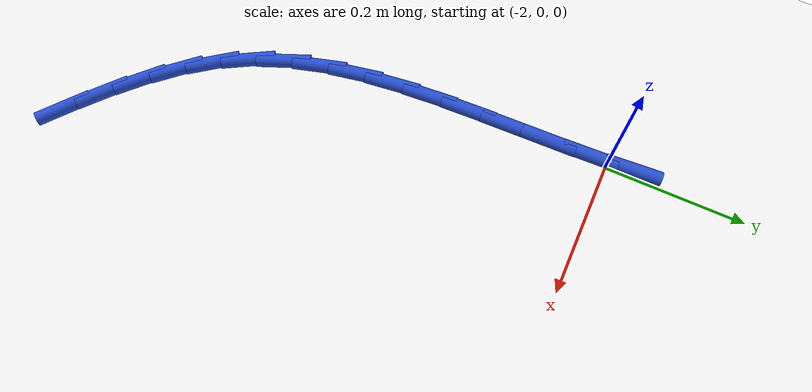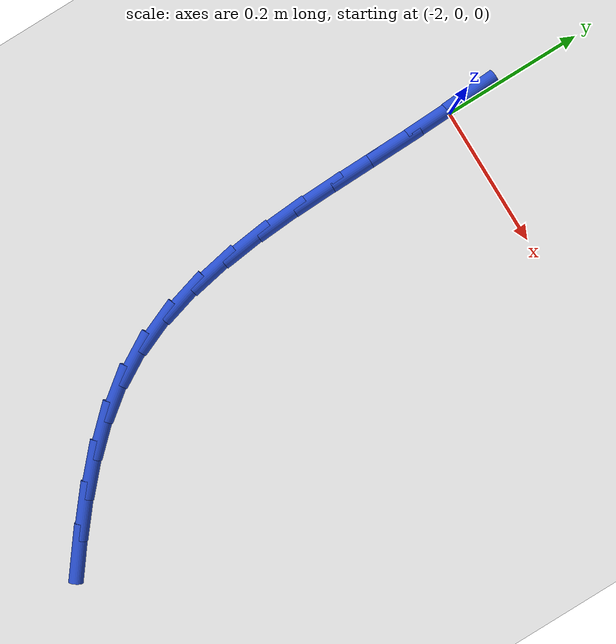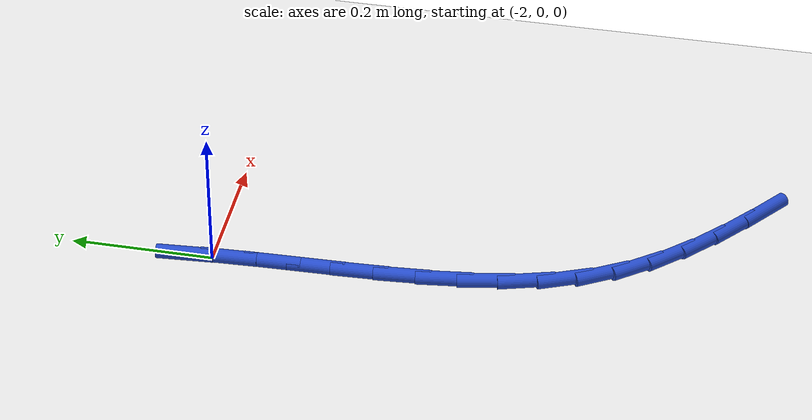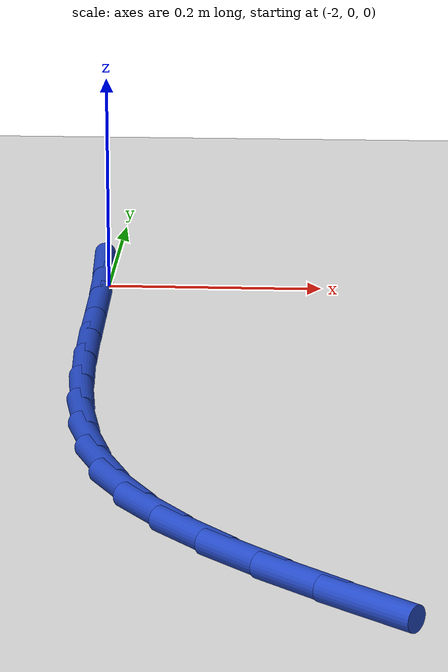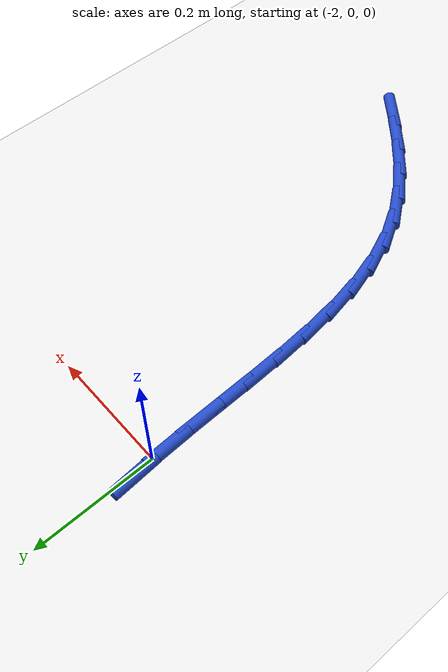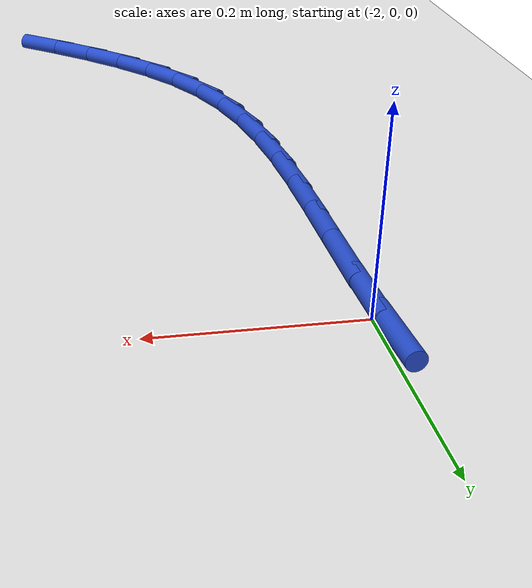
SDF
<sdf version="1.6">
 <world name="default">
  <model name="ground_plane">
   <static>1</static>
   <link name="link">
    <collision name="collision">
     <geometry><plane><normal>0 0 1</normal><size>100 100</size></plane></geometry>
     <surface><friction><ode><mu>100</mu><mu2>50</mu2></ode></friction></surface>
    </collision>
    <visual name="visual">
     <cast_shadows>0</cast_shadows>
     <geometry><plane><normal>0 0 1</normal><size>100 100</size></plane></geometry>
     <material>
      <script><uri>file://media/materials/scripts/gazebo.material</uri><name>Gazebo/WhiteGlow</name></script>
     </material>
    </visual>
   </link>
  </model>
  <model name="line">
   <link name="link_62">
    <pose>-2.0080851975395424 0.03633614180925486 0.01 0 1.57 -1.5087711226889746</pose>
    <collision name="collision">
     <geometry><cylinder><radius>0.01</radius><length>0.08</length></cylinder></geometry>
    </collision>
    <visual name="visual">
     <material>
      <script><name>Gazebo/Blue</name><uri>file://media/materials/scripts/gazebo.material</uri></script>
     </material>
     <geometry><cylinder><radius>0.01</radius><length>0.08</length></cylinder></geometry>
    </visual>
   </link>
   <link name="link_63">
    <pose>-2.0042758097351268 -0.02500185039915747 0.01 0 1.57 -1.5371912192252635</pose>
    <collision name="collision">
     <geometry><cylinder><radius>0.01</radius><length>0.08</length></cylinder></geometry>
    </collision>
    <visual name="visual">
     <material>
      <script><name>Gazebo/Blue</name><uri>file://media/materials/scripts/gazebo.material</uri></script>
     </material>
     <geometry><cylinder><radius>0.01</radius><length>0.08</length></cylinder></geometry>
    </visual>
   </link>
   <link name="link_64">
    <pose>-2.0022108376245997 -0.08642687994699871 0.01 0 1.57 -1.5509743965580336</pose>
    <collision name="collision">
     <geometry><cylinder><radius>0.01</radius><length>0.08</length></cylinder></geometry>
    </collision>
    <visual name="visual">
     <material>
      <script><name>Gazebo/Blue</name><uri>file://media/materials/scripts/gazebo.material</uri></script>
     </material>
     <geometry><cylinder><radius>0.01</radius><length>0.08</length></cylinder></geometry>
    </visual>
   </link>
   <link name="link_65">
    <pose>-2.00099896020463 -0.1475570868533788 0.01 0 1.57 -1.5501205166214473</pose>
    <collision name="collision">
     <geometry><cylinder><radius>0.01</radius><length>0.08</length></cylinder></geometry>
    </collision>
    <visual name="visual">
     <material>
      <script><name>Gazebo/Blue</name><uri>file://media/materials/scripts/gazebo.material</uri></script>
     </material>
     <geometry><cylinder><radius>0.01</radius><length>0.08</length></cylinder></geometry>
    </visual>
   </link>
   <link name="link_66">
    <pose>-1.9997488564718897 -0.208010611137408 0.01 0 1.57 -1.5341152247281253</pose>
    <collision name="collision">
     <geometry><cylinder><radius>0.01</radius><length>0.08</length></cylinder></geometry>
    </collision>
    <visual name="visual">
     <material>
      <script><name>Gazebo/Blue</name><uri>file://media/materials/scripts/gazebo.material</uri></script>
     </material>
     <geometry><cylinder><radius>0.01</radius><length>0.08</length></cylinder></geometry>
    </visual>
   </link>
   <link name="link_67">
    <pose>-1.997569205423047 -0.2674055928181937 0.01 0 1.57 -1.5018771238677637</pose>
    <collision name="collision">
     <geometry><cylinder><radius>0.01</radius><length>0.08</length></cylinder></geometry>
    </collision>
    <visual name="visual">
     <material>
      <script><name>Gazebo/Blue</name><uri>file://media/materials/scripts/gazebo.material</uri></script>
     </material>
     <geometry><cylinder><radius>0.01</radius><length>0.08</length></cylinder></geometry>
    </visual>
   </link>
   <link name="link_68">
    <pose>-1.9935686860547746 -0.3253601719148463 0.01 0 1.57 -1.4517743233230165</pose>
    <collision name="collision">
     <geometry><cylinder><radius>0.01</radius><length>0.08</length></cylinder></geometry>
    </collision>
    <visual name="visual">
     <material>
      <script><name>Gazebo/Blue</name><uri>file://media/materials/scripts/gazebo.material</uri></script>
     </material>
     <geometry><cylinder><radius>0.01</radius><length>0.08</length></cylinder></geometry>
    </visual>
   </link>
   <link name="link_69">
    <pose>-1.9868559773637413 -0.3814924884464749 0.01 0 1.57 -1.381784348450835</pose>
    <collision name="collision">
     <geometry><cylinder><radius>0.01</radius><length>0.08</length></cylinder></geometry>
    </collision>
    <visual name="visual">
     <material>
      <script><name>Gazebo/Blue</name><uri>file://media/materials/scripts/gazebo.material</uri></script>
     </material>
     <geometry><cylinder><radius>0.01</radius><length>0.08</length></cylinder></geometry>
    </visual>
   </link>
   <link name="link_70">
    <pose>-1.9765397583466184 -0.43542068243218957 0.01 0 1.57 -1.2899442706733355</pose>
    <collision name="collision">
     <geometry><cylinder><radius>0.01</radius><length>0.08</length></cylinder></geometry>
    </collision>
    <visual name="visual">
     <material>
      <script><name>Gazebo/Blue</name><uri>file://media/materials/scripts/gazebo.material</uri></script>
     </material>
     <geometry><cylinder><radius>0.01</radius><length>0.08</length></cylinder></geometry>
    </visual>
   </link>
   <link name="link_71">
    <pose>-1.9617287080000767 -0.48676289389109806 0.01 0 1.57 -1.175279450741048</pose>
    <collision name="collision">
     <geometry><cylinder><radius>0.01</radius><length>0.08</length></cylinder></geometry>
    </collision>
    <visual name="visual">
     <material>
      <script><name>Gazebo/Blue</name><uri>file://media/materials/scripts/gazebo.material</uri></script>
     </material>
     <geometry><cylinder><radius>0.01</radius><length>0.08</length></cylinder></geometry>
    </visual>
   </link>
   <link name="link_72">
    <pose>-1.9415315053207858 -0.5351372628423106 0.01 0 1.57 -1.0412843750731338</pose>
    <collision name="collision">
     <geometry><cylinder><radius>0.01</radius><length>0.08</length></cylinder></geometry>
    </collision>
    <visual name="visual">
     <material>
      <script><name>Gazebo/Blue</name><uri>file://media/materials/scripts/gazebo.material</uri></script>
     </material>
     <geometry><cylinder><radius>0.01</radius><length>0.08</length></cylinder></geometry>
    </visual>
   </link>
   <link name="link_73">
    <pose>-1.9151496193699846 -0.5802143458267612 0.01 0 1.57 -0.9151375994864562</pose>
    <collision name="collision">
     <geometry><cylinder><radius>0.01</radius><length>0.08</length></cylinder></geometry>
    </collision>
    <visual name="visual">
     <material>
      <script><name>Gazebo/Blue</name><uri>file://media/materials/scripts/gazebo.material</uri></script>
     </material>
     <geometry><cylinder><radius>0.01</radius><length>0.08</length></cylinder></geometry>
    </visual>
   </link>
   <link name="link_74">
    <pose>-1.8828180826686036 -0.6222485528603786 0.01 0 1.57 -0.8140940789663538</pose>
    <collision name="collision">
     <geometry><cylinder><radius>0.01</radius><length>0.08</length></cylinder></geometry>
    </collision>
    <visual name="visual">
     <material>
      <script><name>Gazebo/Blue</name><uri>file://media/materials/scripts/gazebo.material</uri></script>
     </material>
     <geometry><cylinder><radius>0.01</radius><length>0.08</length></cylinder></geometry>
    </visual>
   </link>
   <link name="link_75">
    <pose>-1.8454179246982263 -0.6618592135649183 0.01 0 1.57 -0.7379986646646817</pose>
    <collision name="collision">
     <geometry><cylinder><radius>0.01</radius><length>0.08</length></cylinder></geometry>
    </collision>
    <visual name="visual">
     <material>
      <script><name>Gazebo/Blue</name><uri>file://media/materials/scripts/gazebo.material</uri></script>
     </material>
     <geometry><cylinder><radius>0.01</radius><length>0.08</length></cylinder></geometry>
    </visual>
   </link>
   <link name="link_76">
    <pose>-1.8038400437349205 -0.6996712323818557 0.01 0 1.57 -0.6848048221667299</pose>
    <collision name="collision">
     <geometry><cylinder><radius>0.01</radius><length>0.08</length></cylinder></geometry>
    </collision>
    <visual name="visual">
     <material>
      <script><name>Gazebo/Blue</name><uri>file://media/materials/scripts/gazebo.material</uri></script>
     </material>
     <geometry><cylinder><radius>0.01</radius><length>0.08</length></cylinder></geometry>
    </visual>
   </link>
   <link name="link_77">
    <pose>-1.7589753380547561 -0.7363095137526666 0.01 0 1.57 -0.6521648775303949</pose>
    <collision name="collision">
     <geometry><cylinder><radius>0.01</radius><length>0.08</length></cylinder></geometry>
    </collision>
    <visual name="visual">
     <material>
      <script><name>Gazebo/Blue</name><uri>file://media/materials/scripts/gazebo.material</uri></script>
     </material>
     <geometry><cylinder><radius>0.01</radius><length>0.08</length></cylinder></geometry>
    </visual>
   </link>
  </model>
 </world>
</sdf>
